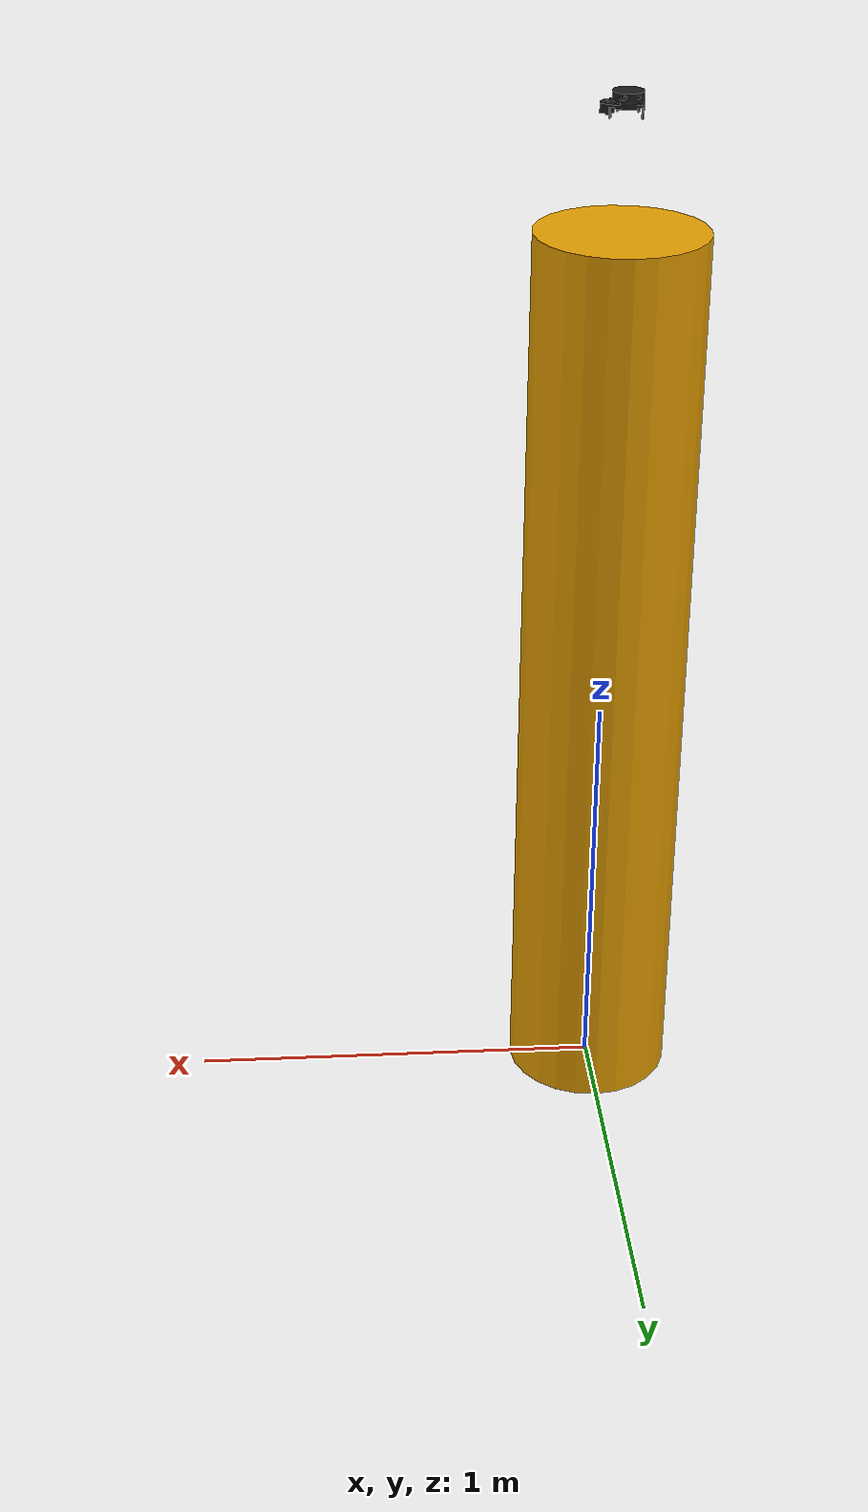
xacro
<?xml version="1.0" ?>

<robot name="turtlebot4_lite" xmlns:xacro="http://ros.org/wiki/xacro">

    <xacro:include filename="$(find robot_models_description)/urdf/rplidar.urdf.xacro" />

    <link name="base_link">
        <visual>
            <origin xyz="0 0 1.1" rpy="0 0 0"/>
            <geometry>
                <cylinder radius="0.2" length="2.2"/>
            </geometry>
        </visual>
        <collision>
            <origin xyz="0 0 1.1" rpy="0 0 0"/>
            <geometry>
                <cylinder radius="0.2" length="2.2"/>
            </geometry>
        </collision>
        <inertial>
            <mass value="10"/>
            <inertia ixx="1.0" ixy="0.0" ixz="0.0" iyy="1.0" iyz="0.0" izz="1.0"/>
        </inertial>
    </link>

    <xacro:rplidar name="rplidar_link" />

    <joint name="base_2_rplidar" type="fixed">
        <origin xyz="0.0 0.0 2.5" rpy="0.0 0.0 0.0"/>
        <parent link="base_link"/>
        <child link="rplidar_link"/>
    </joint> -->

</robot>

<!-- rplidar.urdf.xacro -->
<!-- xacro file for rplidar 2d laser scanner -->

<robot xmlns:xacro="http://ros.org/wiki/xacro">
    <xacro:macro name="rplidar" params="name">

        <link name="${name}">
            <inertial>
                <mass value="0.17"/>
                <inertia ixx="0.0001926" ixy="0.0" ixz="0.0" iyy="0.000122" iyz="0.0" izz="0.0002129"/>
            </inertial>
            <visual>
                <geometry>
                    <mesh filename="package://robot_models_description/meshes/rplidar.dae"/>
                </geometry>
            </visual>
            <collision>
                <geometry>
                    <box size="0.071 0.1 0.06"/>
                </geometry>
            </collision>
        </link>

        <gazebo reference="${name}">
            <sensor type="ray" name="rplidar_sensor">
                <update_rate>62</update_rate>
                <visualize>false</visualize>
                <ray>
                    <scan>
                        <horizontal>
                            <samples>640</samples>
                            <resolution>1</resolution>
                            <min_angle>-3.1415926535897931</min_angle>
                            <max_angle>3.1415926535897931</max_angle>
                        </horizontal>
                    </scan>
                    <range>
                        <min>0.164</min>
                        <max>12</max>
                        <resolution>0.01</resolution>
                    </range>
                </ray>

                <plugin name="gazebo_ros_head_hokuyo_controller" filename="libgazebo_ros_laser.so">
                    <topicName>/turtlebot4_lite/lase_scan</topicName>
                    <frameName>${name}</frameName>
                    <min_range>0.164</min_range>
                    <max_range>12</max_range>
                    <gaussianNoise>0.008</gaussianNoise>
                </plugin>

            </sensor>
        </gazebo>

    </xacro:macro>

</robot>
